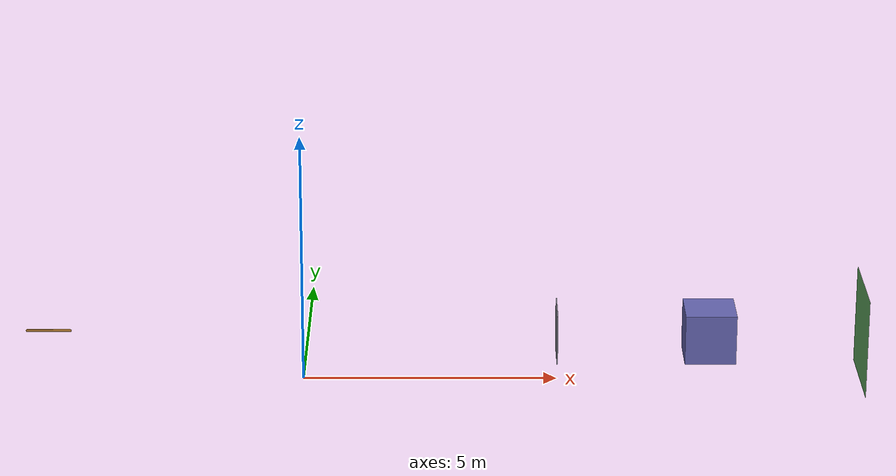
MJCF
<mujoco model="contact_validation_p2">
  <compiler angle="radian"/>
  <option timestep="0.00025" gravity="0 0 -9.81" integrator="RK4"/>

  <default>
    <geom condim="3" friction="0.8 0.02 0.001" solref="0.01 1" solimp="0.9 0.95 0.001"/>
  </default>

  <asset>
    <material name="ball_mat" rgba="0.95 0.18 0.18 1"/>
    <material name="bat_mat" rgba="0.6 0.4 0.15 1"/>
    <material name="plate_mat" rgba="0.5 0.5 0.55 1"/>
    <material name="block_mat" rgba="0.4 0.4 0.7 1"/>
    <material name="plane_mat" rgba="0.4 0.7 0.4 1"/>
  </asset>

  <worldbody>
    <light pos="0 0 5" dir="0 0 -1"/>

    <!-- Same as contact_validation_p1.xml's fixed_plate: half-thickness
         0.01m, LESS than the ball's own radius (0.0366m). -->
    <body name="thin_plate_body" pos="5 0 1">
      <geom name="thin_plate" type="box" size="0.01 0.5 0.5" material="plate_mat"/>
    </body>

    <!-- Half-thickness 0.5m -- ~14x the ball's radius, so the ball's
         center geometrically CANNOT reach the far face while any part of
         the ball still overlaps the near face. -->
    <body name="thick_block_body" pos="8 0 1">
      <geom name="thick_block" type="box" size="0.5 0.5 0.5" material="block_mat"/>
    </body>

    <body name="flat_plane_body" pos="11 0 1">
      <geom name="flat_plane" type="plane" size="1 1 0.01" axisangle="0 1 0 -1.5707963267948966" material="plane_mat"/>
    </body>

    <body name="free_bat_body" pos="-5 0 1">
      <joint name="free_bat_joint" type="free"/>
      <geom name="free_bat" type="capsule" fromto="-0.425 0 0 0.425 0 0" size="0.025" mass="0.9" material="bat_mat"/>
    </body>

    <body name="ball" pos="0 0 1">
      <joint name="ball_free" type="free" damping="0" armature="0"/>
      <geom name="ball_geom" type="sphere" size="0.0366" mass="0.145" material="ball_mat"
            solref="0.0002 0.01" solimp="0.9 0.95 0.0001 0.5 2"/>
    </body>
  </worldbody>
</mujoco>
